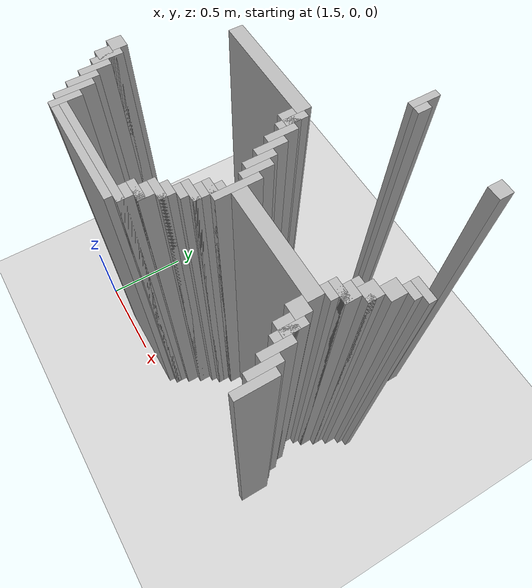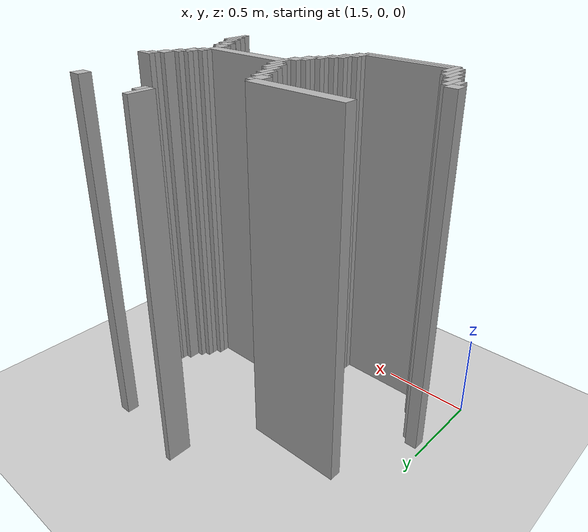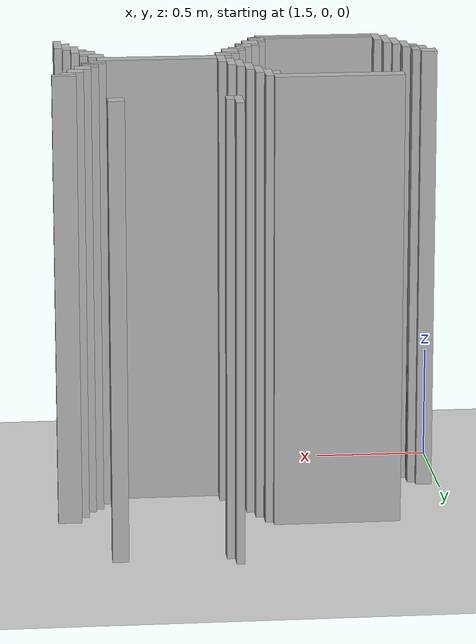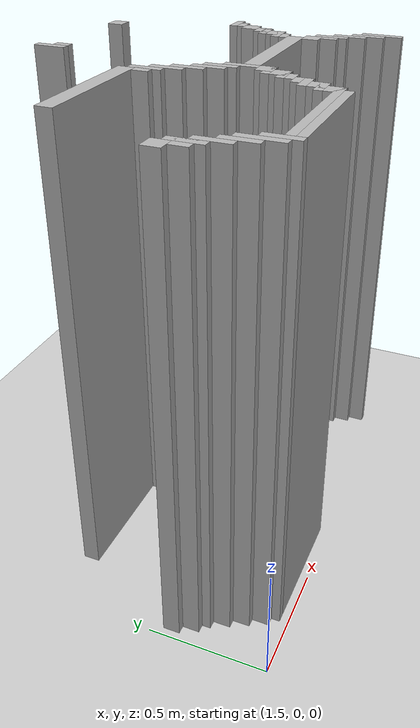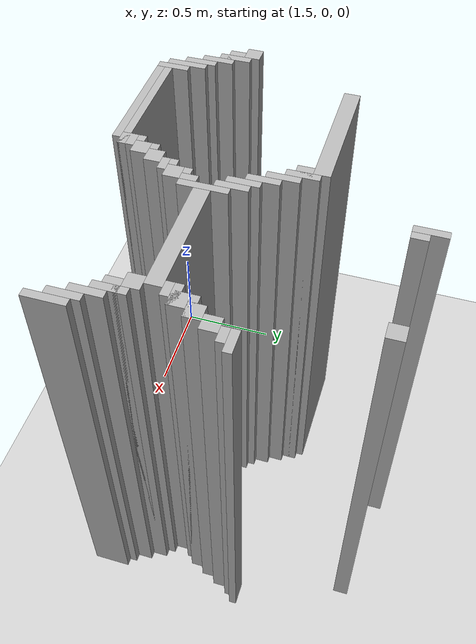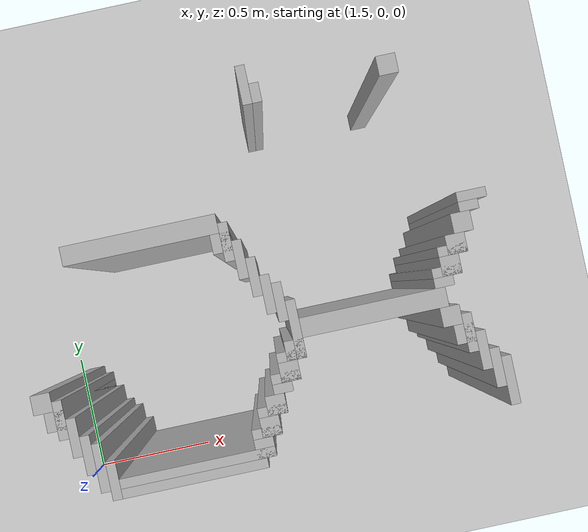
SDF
<sdf version="1.6">
 <world name="slam_world">
  <model name="ground_plane">
   <static>true</static>
   <link name="link">
    <collision name="collision">
     <geometry><plane><normal>0 0 1</normal><size>100 100</size></plane></geometry>
    </collision>
    <visual name="visual">
     <geometry><plane><normal>0 0 1</normal><size>100 100</size></plane></geometry>
     <material>
      <ambient>0.8 0.8 0.8 1</ambient>
      <diffuse>0.8 0.8 0.8 1</diffuse>
      <specular>0.8 0.8 0.8 1</specular>
     </material>
    </visual>
   </link>
  </model>
  <model name="wall_5302">
   <static>true</static>
   <pose>2.488399071925754 1.357308584686775 1.0 0 0 0</pose>
   <link name="link">
    <collision name="collision">
     <geometry><box><size>0.03480278422273782 0.13921113689095127 2.0</size></box></geometry>
    </collision>
    <visual name="visual">
     <geometry><box><size>0.03480278422273782 0.13921113689095127 2.0</size></box></geometry>
     <material><ambient>0.5 0.5 0.5 1</ambient><diffuse>0.7 0.7 0.7 1</diffuse></material>
    </visual>
   </link>
  </model>
  <model name="wall_5327">
   <static>true</static>
   <pose>2.523201856148492 1.322505800464037 1.0 0 0 0</pose>
   <link name="link">
    <collision name="collision">
     <geometry><box><size>0.03480278422273782 0.06960556844547564 2.0</size></box></geometry>
    </collision>
    <visual name="visual">
     <geometry><box><size>0.03480278422273782 0.06960556844547564 2.0</size></box></geometry>
     <material><ambient>0.5 0.5 0.5 1</ambient><diffuse>0.7 0.7 0.7 1</diffuse></material>
    </visual>
   </link>
  </model>
  <model name="wall_5328">
   <static>true</static>
   <pose>2.9930394431554523 1.322505800464037 1.0 0 0 0</pose>
   <link name="link">
    <collision name="collision">
     <geometry><box><size>0.06960556844547564 0.06960556844547564 2.0</size></box></geometry>
    </collision>
    <visual name="visual">
     <geometry><box><size>0.06960556844547564 0.06960556844547564 2.0</size></box></geometry>
     <material><ambient>0.5 0.5 0.5 1</ambient><diffuse>0.7 0.7 0.7 1</diffuse></material>
    </visual>
   </link>
  </model>
  <model name="wall_5431">
   <static>true</static>
   <pose>2.0185614849187936 0.9048723897911832 1.0 0 0 0</pose>
   <link name="link">
    <collision name="collision">
     <geometry><box><size>0.5568445475638051 0.06960556844547564 2.0</size></box></geometry>
    </collision>
    <visual name="visual">
     <geometry><box><size>0.5568445475638051 0.06960556844547564 2.0</size></box></geometry>
     <material><ambient>0.5 0.5 0.5 1</ambient><diffuse>0.7 0.7 0.7 1</diffuse></material>
    </visual>
   </link>
  </model>
  <model name="wall_5446">
   <static>true</static>
   <pose>2.3143851508120648 0.8352668213457076 1.0 0 0 0</pose>
   <link name="link">
    <collision name="collision">
     <geometry><box><size>0.03480278422273782 0.13921113689095127 2.0</size></box></geometry>
    </collision>
    <visual name="visual">
     <geometry><box><size>0.03480278422273782 0.13921113689095127 2.0</size></box></geometry>
     <material><ambient>0.5 0.5 0.5 1</ambient><diffuse>0.7 0.7 0.7 1</diffuse></material>
    </visual>
   </link>
  </model>
  <model name="wall_5456">
   <static>true</static>
   <pose>2.296983758700696 0.8352668213457076 1.0 0 0 0</pose>
   <link name="link">
    <collision name="collision">
     <geometry><box><size>0.06960556844547564 0.06960556844547564 2.0</size></box></geometry>
    </collision>
    <visual name="visual">
     <geometry><box><size>0.06960556844547564 0.06960556844547564 2.0</size></box></geometry>
     <material><ambient>0.5 0.5 0.5 1</ambient><diffuse>0.7 0.7 0.7 1</diffuse></material>
    </visual>
   </link>
  </model>
  <model name="wall_5466">
   <static>true</static>
   <pose>2.3491879350348026 0.765661252900232 1.0 0 0 0</pose>
   <link name="link">
    <collision name="collision">
     <geometry><box><size>0.03480278422273782 0.13921113689095127 2.0</size></box></geometry>
    </collision>
    <visual name="visual">
     <geometry><box><size>0.03480278422273782 0.13921113689095127 2.0</size></box></geometry>
     <material><ambient>0.5 0.5 0.5 1</ambient><diffuse>0.7 0.7 0.7 1</diffuse></material>
    </visual>
   </link>
  </model>
  <model name="wall_5467">
   <static>true</static>
   <pose>3.1844547563805103 0.8178654292343387 1.0 0 0 0</pose>
   <link name="link">
    <collision name="collision">
     <geometry><box><size>0.10440835266821345 0.03480278422273782 2.0</size></box></geometry>
    </collision>
    <visual name="visual">
     <geometry><box><size>0.10440835266821345 0.03480278422273782 2.0</size></box></geometry>
     <material><ambient>0.5 0.5 0.5 1</ambient><diffuse>0.7 0.7 0.7 1</diffuse></material>
    </visual>
   </link>
  </model>
  <model name="wall_5475">
   <static>true</static>
   <pose>3.167053364269141 0.7830626450116009 1.0 0 0 0</pose>
   <link name="link">
    <collision name="collision">
     <geometry><box><size>0.06960556844547564 0.03480278422273782 2.0</size></box></geometry>
    </collision>
    <visual name="visual">
     <geometry><box><size>0.06960556844547564 0.03480278422273782 2.0</size></box></geometry>
     <material><ambient>0.5 0.5 0.5 1</ambient><diffuse>0.7 0.7 0.7 1</diffuse></material>
    </visual>
   </link>
  </model>
  <model name="wall_5482">
   <static>true</static>
   <pose>2.3839907192575405 0.6960556844547563 1.0 0 0 0</pose>
   <link name="link">
    <collision name="collision">
     <geometry><box><size>0.03480278422273782 0.13921113689095127 2.0</size></box></geometry>
    </collision>
    <visual name="visual">
     <geometry><box><size>0.03480278422273782 0.13921113689095127 2.0</size></box></geometry>
     <material><ambient>0.5 0.5 0.5 1</ambient><diffuse>0.7 0.7 0.7 1</diffuse></material>
    </visual>
   </link>
  </model>
  <model name="wall_5483">
   <static>true</static>
   <pose>3.1322505800464038 0.7308584686774942 1.0 0 0 0</pose>
   <link name="link">
    <collision name="collision">
     <geometry><box><size>0.06960556844547564 0.06960556844547564 2.0</size></box></geometry>
    </collision>
    <visual name="visual">
     <geometry><box><size>0.06960556844547564 0.06960556844547564 2.0</size></box></geometry>
     <material><ambient>0.5 0.5 0.5 1</ambient><diffuse>0.7 0.7 0.7 1</diffuse></material>
    </visual>
   </link>
  </model>
  <model name="wall_5492">
   <static>true</static>
   <pose>2.4187935034802783 0.6264501160092807 1.0 0 0 0</pose>
   <link name="link">
    <collision name="collision">
     <geometry><box><size>0.03480278422273782 0.13921113689095127 2.0</size></box></geometry>
    </collision>
    <visual name="visual">
     <geometry><box><size>0.03480278422273782 0.13921113689095127 2.0</size></box></geometry>
     <material><ambient>0.5 0.5 0.5 1</ambient><diffuse>0.7 0.7 0.7 1</diffuse></material>
    </visual>
   </link>
  </model>
  <model name="wall_5493">
   <static>true</static>
   <pose>3.097447795823666 0.6612529002320185 1.0 0 0 0</pose>
   <link name="link">
    <collision name="collision">
     <geometry><box><size>0.06960556844547564 0.06960556844547564 2.0</size></box></geometry>
    </collision>
    <visual name="visual">
     <geometry><box><size>0.06960556844547564 0.06960556844547564 2.0</size></box></geometry>
     <material><ambient>0.5 0.5 0.5 1</ambient><diffuse>0.7 0.7 0.7 1</diffuse></material>
    </visual>
   </link>
  </model>
  <model name="wall_5502">
   <static>true</static>
   <pose>2.453596287703016 0.5916473317865429 1.0 0 0 0</pose>
   <link name="link">
    <collision name="collision">
     <geometry><box><size>0.03480278422273782 0.13921113689095127 2.0</size></box></geometry>
    </collision>
    <visual name="visual">
     <geometry><box><size>0.03480278422273782 0.13921113689095127 2.0</size></box></geometry>
     <material><ambient>0.5 0.5 0.5 1</ambient><diffuse>0.7 0.7 0.7 1</diffuse></material>
    </visual>
   </link>
  </model>
  <model name="wall_5503">
   <static>true</static>
   <pose>3.0800464037122968 0.6438515081206496 1.0 0 0 0</pose>
   <link name="link">
    <collision name="collision">
     <geometry><box><size>0.10440835266821345 0.03480278422273782 2.0</size></box></geometry>
    </collision>
    <visual name="visual">
     <geometry><box><size>0.10440835266821345 0.03480278422273782 2.0</size></box></geometry>
     <material><ambient>0.5 0.5 0.5 1</ambient><diffuse>0.7 0.7 0.7 1</diffuse></material>
    </visual>
   </link>
  </model>
  <model name="wall_5511">
   <static>true</static>
   <pose>3.062645011600928 0.5916473317865429 1.0 0 0 0</pose>
   <link name="link">
    <collision name="collision">
     <geometry><box><size>0.06960556844547564 0.06960556844547564 2.0</size></box></geometry>
    </collision>
    <visual name="visual">
     <geometry><box><size>0.06960556844547564 0.06960556844547564 2.0</size></box></geometry>
     <material><ambient>0.5 0.5 0.5 1</ambient><diffuse>0.7 0.7 0.7 1</diffuse></material>
    </visual>
   </link>
  </model>
  <model name="wall_5518">
   <static>true</static>
   <pose>2.488399071925754 0.4872389791183295 1.0 0 0 0</pose>
   <link name="link">
    <collision name="collision">
     <geometry><box><size>0.03480278422273782 0.2088167053364269 2.0</size></box></geometry>
    </collision>
    <visual name="visual">
     <geometry><box><size>0.03480278422273782 0.2088167053364269 2.0</size></box></geometry>
     <material><ambient>0.5 0.5 0.5 1</ambient><diffuse>0.7 0.7 0.7 1</diffuse></material>
    </visual>
   </link>
  </model>
  <model name="wall_5519">
   <static>true</static>
   <pose>3.045243619489559 0.574245939675174 1.0 0 0 0</pose>
   <link name="link">
    <collision name="collision">
     <geometry><box><size>0.10440835266821345 0.03480278422273782 2.0</size></box></geometry>
    </collision>
    <visual name="visual">
     <geometry><box><size>0.10440835266821345 0.03480278422273782 2.0</size></box></geometry>
     <material><ambient>0.5 0.5 0.5 1</ambient><diffuse>0.7 0.7 0.7 1</diffuse></material>
    </visual>
   </link>
  </model>
  <model name="wall_5527">
   <static>true</static>
   <pose>3.02784222737819 0.5394431554524362 1.0 0 0 0</pose>
   <link name="link">
    <collision name="collision">
     <geometry><box><size>0.06960556844547564 0.03480278422273782 2.0</size></box></geometry>
    </collision>
    <visual name="visual">
     <geometry><box><size>0.06960556844547564 0.03480278422273782 2.0</size></box></geometry>
     <material><ambient>0.5 0.5 0.5 1</ambient><diffuse>0.7 0.7 0.7 1</diffuse></material>
    </visual>
   </link>
  </model>
  <model name="wall_5534">
   <static>true</static>
   <pose>2.7668213457076565 0.4872389791183295 1.0 0 0 0</pose>
   <link name="link">
    <collision name="collision">
     <geometry><box><size>0.5220417633410672 0.06960556844547564 2.0</size></box></geometry>
    </collision>
    <visual name="visual">
     <geometry><box><size>0.5220417633410672 0.06960556844547564 2.0</size></box></geometry>
     <material><ambient>0.5 0.5 0.5 1</ambient><diffuse>0.7 0.7 0.7 1</diffuse></material>
    </visual>
   </link>
  </model>
  <model name="wall_5545">
   <static>true</static>
   <pose>1.5661252900232019 0.4176334106728538 1.0 0 0 0</pose>
   <link name="link">
    <collision name="collision">
     <geometry><box><size>0.06960556844547564 0.06960556844547564 2.0</size></box></geometry>
    </collision>
    <visual name="visual">
     <geometry><box><size>0.06960556844547564 0.06960556844547564 2.0</size></box></geometry>
     <material><ambient>0.5 0.5 0.5 1</ambient><diffuse>0.7 0.7 0.7 1</diffuse></material>
    </visual>
   </link>
  </model>
  <model name="wall_5546">
   <static>true</static>
   <pose>2.470997679814385 0.4176334106728538 1.0 0 0 0</pose>
   <link name="link">
    <collision name="collision">
     <geometry><box><size>0.06960556844547564 0.06960556844547564 2.0</size></box></geometry>
    </collision>
    <visual name="visual">
     <geometry><box><size>0.06960556844547564 0.06960556844547564 2.0</size></box></geometry>
     <material><ambient>0.5 0.5 0.5 1</ambient><diffuse>0.7 0.7 0.7 1</diffuse></material>
    </visual>
   </link>
  </model>
  <model name="wall_5547">
   <static>true</static>
   <pose>3.02784222737819 0.4176334106728538 1.0 0 0 0</pose>
   <link name="link">
    <collision name="collision">
     <geometry><box><size>0.06960556844547564 0.06960556844547564 2.0</size></box></geometry>
    </collision>
    <visual name="visual">
     <geometry><box><size>0.06960556844547564 0.06960556844547564 2.0</size></box></geometry>
     <material><ambient>0.5 0.5 0.5 1</ambient><diffuse>0.7 0.7 0.7 1</diffuse></material>
    </visual>
   </link>
  </model>
  <model name="wall_5565">
   <static>true</static>
   <pose>1.6183294663573085 0.34802784222737815 1.0 0 0 0</pose>
   <link name="link">
    <collision name="collision">
     <geometry><box><size>0.03480278422273782 0.13921113689095127 2.0</size></box></geometry>
    </collision>
    <visual name="visual">
     <geometry><box><size>0.03480278422273782 0.13921113689095127 2.0</size></box></geometry>
     <material><ambient>0.5 0.5 0.5 1</ambient><diffuse>0.7 0.7 0.7 1</diffuse></material>
    </visual>
   </link>
  </model>
  <model name="wall_5566">
   <static>true</static>
   <pose>2.453596287703016 0.4002320185614849 1.0 0 0 0</pose>
   <link name="link">
    <collision name="collision">
     <geometry><box><size>0.10440835266821345 0.03480278422273782 2.0</size></box></geometry>
    </collision>
    <visual name="visual">
     <geometry><box><size>0.10440835266821345 0.03480278422273782 2.0</size></box></geometry>
     <material><ambient>0.5 0.5 0.5 1</ambient><diffuse>0.7 0.7 0.7 1</diffuse></material>
    </visual>
   </link>
  </model>
  <model name="wall_5567">
   <static>true</static>
   <pose>3.0800464037122968 0.34802784222737815 1.0 0 0 0</pose>
   <link name="link">
    <collision name="collision">
     <geometry><box><size>0.03480278422273782 0.13921113689095127 2.0</size></box></geometry>
    </collision>
    <visual name="visual">
     <geometry><box><size>0.03480278422273782 0.13921113689095127 2.0</size></box></geometry>
     <material><ambient>0.5 0.5 0.5 1</ambient><diffuse>0.7 0.7 0.7 1</diffuse></material>
    </visual>
   </link>
  </model>
  <model name="wall_5585">
   <static>true</static>
   <pose>1.6009280742459395 0.34802784222737815 1.0 0 0 0</pose>
   <link name="link">
    <collision name="collision">
     <geometry><box><size>0.06960556844547564 0.06960556844547564 2.0</size></box></geometry>
    </collision>
    <visual name="visual">
     <geometry><box><size>0.06960556844547564 0.06960556844547564 2.0</size></box></geometry>
     <material><ambient>0.5 0.5 0.5 1</ambient><diffuse>0.7 0.7 0.7 1</diffuse></material>
    </visual>
   </link>
  </model>
  <model name="wall_5586">
   <static>true</static>
   <pose>2.436194895591647 0.34802784222737815 1.0 0 0 0</pose>
   <link name="link">
    <collision name="collision">
     <geometry><box><size>0.06960556844547564 0.06960556844547564 2.0</size></box></geometry>
    </collision>
    <visual name="visual">
     <geometry><box><size>0.06960556844547564 0.06960556844547564 2.0</size></box></geometry>
     <material><ambient>0.5 0.5 0.5 1</ambient><diffuse>0.7 0.7 0.7 1</diffuse></material>
    </visual>
   </link>
  </model>
  <model name="wall_5587">
   <static>true</static>
   <pose>3.062645011600928 0.34802784222737815 1.0 0 0 0</pose>
   <link name="link">
    <collision name="collision">
     <geometry><box><size>0.06960556844547564 0.06960556844547564 2.0</size></box></geometry>
    </collision>
    <visual name="visual">
     <geometry><box><size>0.06960556844547564 0.06960556844547564 2.0</size></box></geometry>
     <material><ambient>0.5 0.5 0.5 1</ambient><diffuse>0.7 0.7 0.7 1</diffuse></material>
    </visual>
   </link>
  </model>
  <model name="wall_5605">
   <static>true</static>
   <pose>1.6531322505800463 0.27842227378190254 1.0 0 0 0</pose>
   <link name="link">
    <collision name="collision">
     <geometry><box><size>0.03480278422273782 0.13921113689095127 2.0</size></box></geometry>
    </collision>
    <visual name="visual">
     <geometry><box><size>0.03480278422273782 0.13921113689095127 2.0</size></box></geometry>
     <material><ambient>0.5 0.5 0.5 1</ambient><diffuse>0.7 0.7 0.7 1</diffuse></material>
    </visual>
   </link>
  </model>
  <model name="wall_5606">
   <static>true</static>
   <pose>2.4187935034802783 0.3306264501160093 1.0 0 0 0</pose>
   <link name="link">
    <collision name="collision">
     <geometry><box><size>0.10440835266821345 0.03480278422273782 2.0</size></box></geometry>
    </collision>
    <visual name="visual">
     <geometry><box><size>0.10440835266821345 0.03480278422273782 2.0</size></box></geometry>
     <material><ambient>0.5 0.5 0.5 1</ambient><diffuse>0.7 0.7 0.7 1</diffuse></material>
    </visual>
   </link>
  </model>
  <model name="wall_5607">
   <static>true</static>
   <pose>3.1148491879350346 0.27842227378190254 1.0 0 0 0</pose>
   <link name="link">
    <collision name="collision">
     <geometry><box><size>0.03480278422273782 0.13921113689095127 2.0</size></box></geometry>
    </collision>
    <visual name="visual">
     <geometry><box><size>0.03480278422273782 0.13921113689095127 2.0</size></box></geometry>
     <material><ambient>0.5 0.5 0.5 1</ambient><diffuse>0.7 0.7 0.7 1</diffuse></material>
    </visual>
   </link>
  </model>
  <model name="wall_5624">
   <static>true</static>
   <pose>2.4013921113689096 0.29582366589327147 1.0 0 0 0</pose>
   <link name="link">
    <collision name="collision">
     <geometry><box><size>0.06960556844547564 0.03480278422273782 2.0</size></box></geometry>
    </collision>
    <visual name="visual">
     <geometry><box><size>0.06960556844547564 0.03480278422273782 2.0</size></box></geometry>
     <material><ambient>0.5 0.5 0.5 1</ambient><diffuse>0.7 0.7 0.7 1</diffuse></material>
    </visual>
   </link>
  </model>
  <model name="wall_5635">
   <static>true</static>
   <pose>1.6879350348027842 0.2088167053364269 1.0 0 0 0</pose>
   <link name="link">
    <collision name="collision">
     <geometry><box><size>0.03480278422273782 0.13921113689095127 2.0</size></box></geometry>
    </collision>
    <visual name="visual">
     <geometry><box><size>0.03480278422273782 0.13921113689095127 2.0</size></box></geometry>
     <material><ambient>0.5 0.5 0.5 1</ambient><diffuse>0.7 0.7 0.7 1</diffuse></material>
    </visual>
   </link>
  </model>
  <model name="wall_5636">
   <static>true</static>
   <pose>2.3665893271461718 0.24361948955916474 1.0 0 0 0</pose>
   <link name="link">
    <collision name="collision">
     <geometry><box><size>0.06960556844547564 0.06960556844547564 2.0</size></box></geometry>
    </collision>
    <visual name="visual">
     <geometry><box><size>0.06960556844547564 0.06960556844547564 2.0</size></box></geometry>
     <material><ambient>0.5 0.5 0.5 1</ambient><diffuse>0.7 0.7 0.7 1</diffuse></material>
    </visual>
   </link>
  </model>
  <model name="wall_5637">
   <static>true</static>
   <pose>3.1496519721577725 0.2088167053364269 1.0 0 0 0</pose>
   <link name="link">
    <collision name="collision">
     <geometry><box><size>0.03480278422273782 0.13921113689095127 2.0</size></box></geometry>
    </collision>
    <visual name="visual">
     <geometry><box><size>0.03480278422273782 0.13921113689095127 2.0</size></box></geometry>
     <material><ambient>0.5 0.5 0.5 1</ambient><diffuse>0.7 0.7 0.7 1</diffuse></material>
    </visual>
   </link>
  </model>
  <model name="wall_5655">
   <static>true</static>
   <pose>1.722737819025522 0.15661252900232017 1.0 0 0 0</pose>
   <link name="link">
    <collision name="collision">
     <geometry><box><size>0.03480278422273782 0.17401392111368907 2.0</size></box></geometry>
    </collision>
    <visual name="visual">
     <geometry><box><size>0.03480278422273782 0.17401392111368907 2.0</size></box></geometry>
     <material><ambient>0.5 0.5 0.5 1</ambient><diffuse>0.7 0.7 0.7 1</diffuse></material>
    </visual>
   </link>
  </model>
  <model name="wall_5656">
   <static>true</static>
   <pose>2.3491879350348026 0.2262180974477958 1.0 0 0 0</pose>
   <link name="link">
    <collision name="collision">
     <geometry><box><size>0.10440835266821345 0.03480278422273782 2.0</size></box></geometry>
    </collision>
    <visual name="visual">
     <geometry><box><size>0.10440835266821345 0.03480278422273782 2.0</size></box></geometry>
     <material><ambient>0.5 0.5 0.5 1</ambient><diffuse>0.7 0.7 0.7 1</diffuse></material>
    </visual>
   </link>
  </model>
  <model name="wall_5657">
   <static>true</static>
   <pose>3.1844547563805103 0.15661252900232017 1.0 0 0 0</pose>
   <link name="link">
    <collision name="collision">
     <geometry><box><size>0.03480278422273782 0.17401392111368907 2.0</size></box></geometry>
    </collision>
    <visual name="visual">
     <geometry><box><size>0.03480278422273782 0.17401392111368907 2.0</size></box></geometry>
     <material><ambient>0.5 0.5 0.5 1</ambient><diffuse>0.7 0.7 0.7 1</diffuse></material>
    </visual>
   </link>
  </model>
  <model name="wall_5674">
   <static>true</static>
   <pose>2.331786542923434 0.17401392111368907 1.0 0 0 0</pose>
   <link name="link">
    <collision name="collision">
     <geometry><box><size>0.06960556844547564 0.06960556844547564 2.0</size></box></geometry>
    </collision>
    <visual name="visual">
     <geometry><box><size>0.06960556844547564 0.06960556844547564 2.0</size></box></geometry>
     <material><ambient>0.5 0.5 0.5 1</ambient><diffuse>0.7 0.7 0.7 1</diffuse></material>
    </visual>
   </link>
  </model>
  <model name="wall_5685">
   <static>true</static>
   <pose>1.75754060324826 0.10440835266821345 1.0 0 0 0</pose>
   <link name="link">
    <collision name="collision">
     <geometry><box><size>0.03480278422273782 0.13921113689095127 2.0</size></box></geometry>
    </collision>
    <visual name="visual">
     <geometry><box><size>0.03480278422273782 0.13921113689095127 2.0</size></box></geometry>
     <material><ambient>0.5 0.5 0.5 1</ambient><diffuse>0.7 0.7 0.7 1</diffuse></material>
    </visual>
   </link>
  </model>
  <model name="wall_5686">
   <static>true</static>
   <pose>2.3143851508120648 0.15661252900232017 1.0 0 0 0</pose>
   <link name="link">
    <collision name="collision">
     <geometry><box><size>0.10440835266821345 0.03480278422273782 2.0</size></box></geometry>
    </collision>
    <visual name="visual">
     <geometry><box><size>0.10440835266821345 0.03480278422273782 2.0</size></box></geometry>
     <material><ambient>0.5 0.5 0.5 1</ambient><diffuse>0.7 0.7 0.7 1</diffuse></material>
    </visual>
   </link>
  </model>
  <model name="wall_5704">
   <static>true</static>
   <pose>2.296983758700696 0.10440835266821345 1.0 0 0 0</pose>
   <link name="link">
    <collision name="collision">
     <geometry><box><size>0.06960556844547564 0.06960556844547564 2.0</size></box></geometry>
    </collision>
    <visual name="visual">
     <geometry><box><size>0.06960556844547564 0.06960556844547564 2.0</size></box></geometry>
     <material><ambient>0.5 0.5 0.5 1</ambient><diffuse>0.7 0.7 0.7 1</diffuse></material>
    </visual>
   </link>
  </model>
  <model name="wall_5714">
   <static>true</static>
   <pose>2.053364269141531 0.08700696055684454 1.0 0 0 0</pose>
   <link name="link">
    <collision name="collision">
     <geometry><box><size>0.5568445475638051 0.03480278422273782 2.0</size></box></geometry>
    </collision>
    <visual name="visual">
     <geometry><box><size>0.5568445475638051 0.03480278422273782 2.0</size></box></geometry>
     <material><ambient>0.5 0.5 0.5 1</ambient><diffuse>0.7 0.7 0.7 1</diffuse></material>
    </visual>
   </link>
  </model>
  <model name="wall_5725">
   <static>true</static>
   <pose>2.0359628770301623 0.052204176334106726 1.0 0 0 0</pose>
   <link name="link">
    <collision name="collision">
     <geometry><box><size>0.5220417633410672 0.03480278422273782 2.0</size></box></geometry>
    </collision>
    <visual name="visual">
     <geometry><box><size>0.5220417633410672 0.03480278422273782 2.0</size></box></geometry>
     <material><ambient>0.5 0.5 0.5 1</ambient><diffuse>0.7 0.7 0.7 1</diffuse></material>
    </visual>
   </link>
  </model>
 </world>
</sdf>
